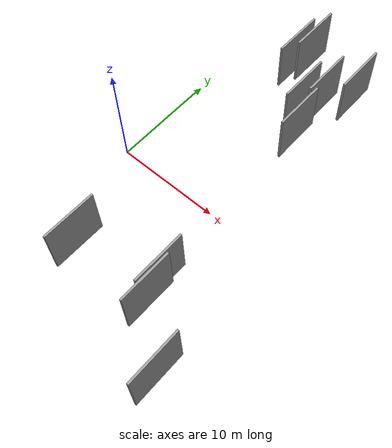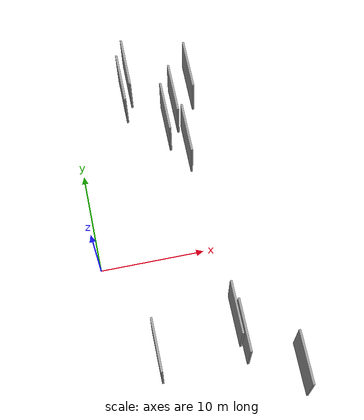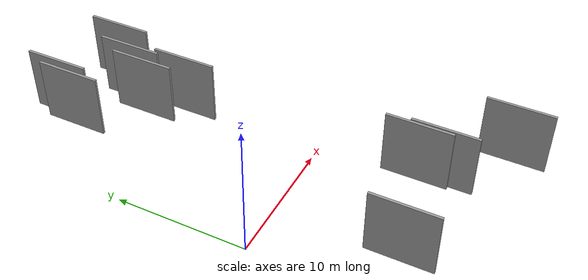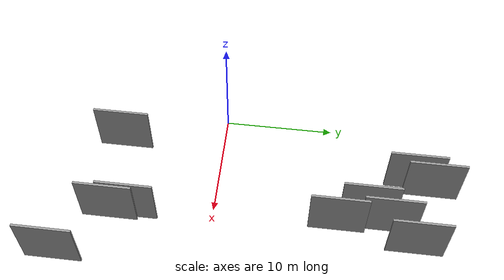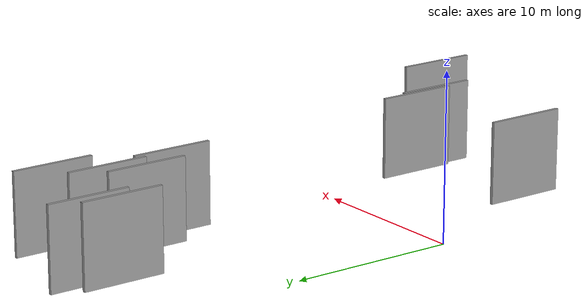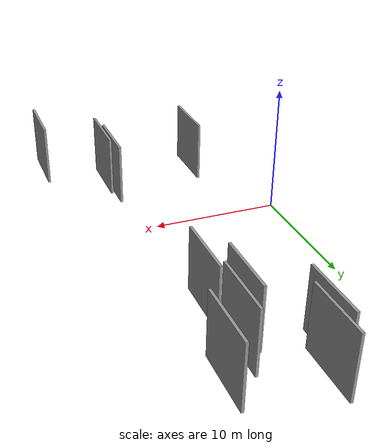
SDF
<sdf version="1.6">
 <world name="default">
  <scene>
   <sky><clouds><speed>12</speed></clouds></sky>
   <ambient>0.4 0.4 0.4 1</ambient>
   <background>0.7 0.7 0.7 1</background>
   <shadows>1</shadows>
  </scene>
  <gravity>0 0 -9.8066</gravity>
  <magnetic_field>6e-06 2.3e-05 -4.2e-05</magnetic_field>
  <physics default="0" name="default_physics" type="ode">
   <ode>
    <solver>
     <type>quick</type>
     <iters>10</iters>
     <sor>1.0</sor>
     <use_dynamic_moi_rescaling>0</use_dynamic_moi_rescaling>
    </solver>
    <constraints>
     <cfm>0</cfm>
     <erp>0.2</erp>
     <contact_max_correcting_vel>100</contact_max_correcting_vel>
     <contact_surface_layer>0.001</contact_surface_layer>
    </constraints>
   </ode>
   <max_step_size>0.004</max_step_size>
   <real_time_factor>1</real_time_factor>
   <real_time_update_rate>250</real_time_update_rate>
  </physics>
  <light name="sun" type="directional">
   <pose>0 0 10 0 0 0</pose>
   <diffuse>0.8 0.8 0.8 1</diffuse>
   <specular>0.2 0.2 0.2 1</specular>
   <attenuation>
    <range>1000</range>
    <constant>0.9</constant>
    <linear>0.01</linear>
    <quadratic>0.001</quadratic>
   </attenuation>
   <direction>-0.5 0.1 -0.9</direction>
  </light>
  <model name="grey_wall_1">
   <static>1</static>
   <pose>12.1852 17.8140 0.0 0.000000 0.000000 1.570796</pose>
   <link name="link">
    <pose>0 0 2.50 0 0 0</pose>
    <collision name="collision"><geometry><box><size>5.00 0.2 5.00</size></box></geometry></collision>
    <visual name="visual">
     <cast_shadows>0</cast_shadows>
     <geometry><box><size>5.00 0.2 5.00</size></box></geometry>
     <material>
      <script>
       <uri>model://grey_wall/materials/scripts</uri>
       <uri>model://grey_wall/materials/textures</uri>
       <name>vrc/grey_wall</name>
      </script>
     </material>
    </visual>
   </link>
  </model>
  <model name="grey_wall_2">
   <static>1</static>
   <pose>6.1449 19.2607 0.0 0.000000 0.000000 1.570796</pose>
   <link name="link">
    <pose>0 0 2.50 0 0 0</pose>
    <collision name="collision"><geometry><box><size>5.00 0.2 5.00</size></box></geometry></collision>
    <visual name="visual">
     <cast_shadows>0</cast_shadows>
     <geometry><box><size>5.00 0.2 5.00</size></box></geometry>
     <material>
      <script>
       <uri>model://grey_wall/materials/scripts</uri>
       <uri>model://grey_wall/materials/textures</uri>
       <name>vrc/grey_wall</name>
      </script>
     </material>
    </visual>
   </link>
  </model>
  <model name="grey_wall_3">
   <static>1</static>
   <pose>5.3887 17.6424 0.0 0.000000 0.000000 1.570796</pose>
   <link name="link">
    <pose>0 0 2.50 0 0 0</pose>
    <collision name="collision"><geometry><box><size>5.00 0.2 5.00</size></box></geometry></collision>
    <visual name="visual">
     <cast_shadows>0</cast_shadows>
     <geometry><box><size>5.00 0.2 5.00</size></box></geometry>
     <material>
      <script>
       <uri>model://grey_wall/materials/scripts</uri>
       <uri>model://grey_wall/materials/textures</uri>
       <name>vrc/grey_wall</name>
      </script>
     </material>
    </visual>
   </link>
  </model>
  <model name="grey_wall_4">
   <static>1</static>
   <pose>16.3974 -12.9994 0.0 0.000000 0.000000 1.570796</pose>
   <link name="link">
    <pose>0 0 2.50 0 0 0</pose>
    <collision name="collision"><geometry><box><size>5.00 0.2 5.00</size></box></geometry></collision>
    <visual name="visual">
     <cast_shadows>0</cast_shadows>
     <geometry><box><size>5.00 0.2 5.00</size></box></geometry>
     <material>
      <script>
       <uri>model://grey_wall/materials/scripts</uri>
       <uri>model://grey_wall/materials/textures</uri>
       <name>vrc/grey_wall</name>
      </script>
     </material>
    </visual>
   </link>
  </model>
  <model name="grey_wall_5">
   <static>1</static>
   <pose>3.7603 -9.2717 0.0 0.000000 0.000000 1.570796</pose>
   <link name="link">
    <pose>0 0 2.50 0 0 0</pose>
    <collision name="collision"><geometry><box><size>5.00 0.2 5.00</size></box></geometry></collision>
    <visual name="visual">
     <cast_shadows>0</cast_shadows>
     <geometry><box><size>5.00 0.2 5.00</size></box></geometry>
     <material>
      <script>
       <uri>model://grey_wall/materials/scripts</uri>
       <uri>model://grey_wall/materials/textures</uri>
       <name>vrc/grey_wall</name>
      </script>
     </material>
    </visual>
   </link>
  </model>
  <model name="grey_wall_6">
   <static>1</static>
   <pose>10.6441 11.0075 0.0 0.000000 0.000000 1.570796</pose>
   <link name="link">
    <pose>0 0 2.50 0 0 0</pose>
    <collision name="collision"><geometry><box><size>5.00 0.2 5.00</size></box></geometry></collision>
    <visual name="visual">
     <cast_shadows>0</cast_shadows>
     <geometry><box><size>5.00 0.2 5.00</size></box></geometry>
     <material>
      <script>
       <uri>model://grey_wall/materials/scripts</uri>
       <uri>model://grey_wall/materials/textures</uri>
       <name>vrc/grey_wall</name>
      </script>
     </material>
    </visual>
   </link>
  </model>
  <model name="grey_wall_7">
   <static>1</static>
   <pose>11.4526 -7.3562 0.0 0.000000 0.000000 1.570796</pose>
   <link name="link">
    <pose>0 0 2.50 0 0 0</pose>
    <collision name="collision"><geometry><box><size>5.00 0.2 5.00</size></box></geometry></collision>
    <visual name="visual">
     <cast_shadows>0</cast_shadows>
     <geometry><box><size>5.00 0.2 5.00</size></box></geometry>
     <material>
      <script>
       <uri>model://grey_wall/materials/scripts</uri>
       <uri>model://grey_wall/materials/textures</uri>
       <name>vrc/grey_wall</name>
      </script>
     </material>
    </visual>
   </link>
  </model>
  <model name="grey_wall_8">
   <static>1</static>
   <pose>9.0669 13.7112 0.0 0.000000 0.000000 1.570796</pose>
   <link name="link">
    <pose>0 0 2.50 0 0 0</pose>
    <collision name="collision"><geometry><box><size>5.00 0.2 5.00</size></box></geometry></collision>
    <visual name="visual">
     <cast_shadows>0</cast_shadows>
     <geometry><box><size>5.00 0.2 5.00</size></box></geometry>
     <material>
      <script>
       <uri>model://grey_wall/materials/scripts</uri>
       <uri>model://grey_wall/materials/textures</uri>
       <name>vrc/grey_wall</name>
      </script>
     </material>
    </visual>
   </link>
  </model>
  <model name="grey_wall_9">
   <static>1</static>
   <pose>11.7659 -9.0981 0.0 0.000000 0.000000 1.570796</pose>
   <link name="link">
    <pose>0 0 2.50 0 0 0</pose>
    <collision name="collision"><geometry><box><size>5.00 0.2 5.00</size></box></geometry></collision>
    <visual name="visual">
     <cast_shadows>0</cast_shadows>
     <geometry><box><size>5.00 0.2 5.00</size></box></geometry>
     <material>
      <script>
       <uri>model://grey_wall/materials/scripts</uri>
       <uri>model://grey_wall/materials/textures</uri>
       <name>vrc/grey_wall</name>
      </script>
     </material>
    </visual>
   </link>
  </model>
  <model name="grey_wall_10">
   <static>1</static>
   <pose>10.2035 15.5360 0.0 0.000000 0.000000 1.570796</pose>
   <link name="link">
    <pose>0 0 2.50 0 0 0</pose>
    <collision name="collision"><geometry><box><size>5.00 0.2 5.00</size></box></geometry></collision>
    <visual name="visual">
     <cast_shadows>0</cast_shadows>
     <geometry><box><size>5.00 0.2 5.00</size></box></geometry>
     <material>
      <script>
       <uri>model://grey_wall/materials/scripts</uri>
       <uri>model://grey_wall/materials/textures</uri>
       <name>vrc/grey_wall</name>
      </script>
     </material>
    </visual>
   </link>
  </model>
 </world>
</sdf>
